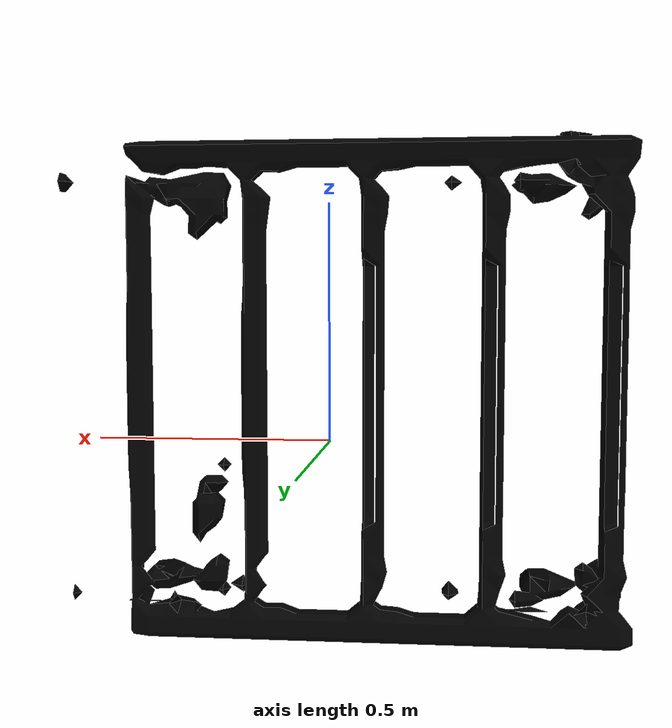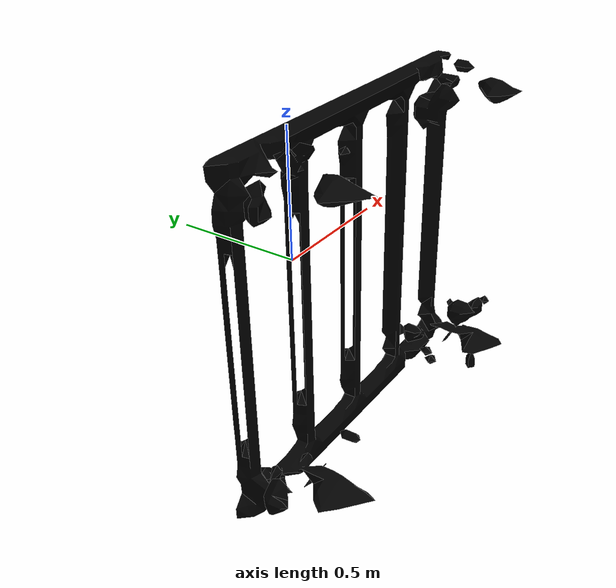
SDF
<?xml version="1.0"?>
<sdf version="1.7">
  <model name="trolley">
    <pose>0 0 0 0 0 0</pose>
    <static>false</static>

    <link name="base">

      <inertial>
        <pose>-0 0 0 0 0 0</pose>
        <mass>5</mass>
        <inertia>
          <ixx>0.07</ixx><iyy>0.11</iyy><izz>0.15</izz>
          <ixy>0</ixy><ixz>0</ixz><iyz>0</iyz>
        </inertia>
      </inertial>

      <collision name="collision">
        <pose>0 -0.25 0 0 0 0</pose>
        <geometry>
          <mesh>
            <uri>model://trolley/meshes/DOLLEYASSY_1.stl</uri>
            <scale>0.002 0.002 0.002</scale>
          </mesh>
        </geometry>
      </collision>

      <visual name="visual">
        <pose>0 0 0 0 0 0</pose>
        <geometry>
          <mesh>
            <uri>model://trolley/meshes/DOLLEYASSY.stl</uri>
            <scale>0.002 0.002 0.002</scale>
          </mesh>
        </geometry>
        <material>
          <ambient>0.0 0.0 0.0 1</ambient>
          <diffuse>0.0 0.0 0.0 1</diffuse>
        </material>
      </visual>
    </link>
  </model>
</sdf>
